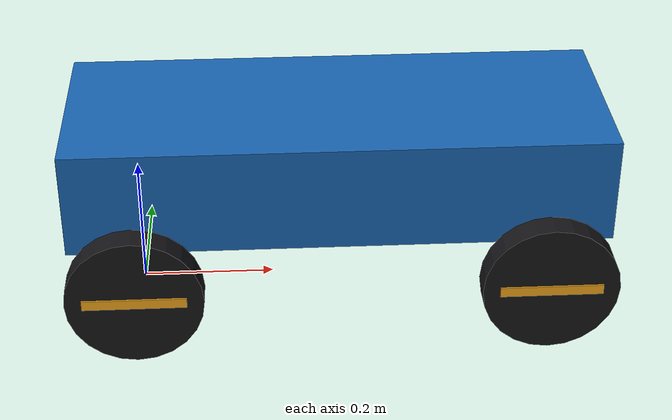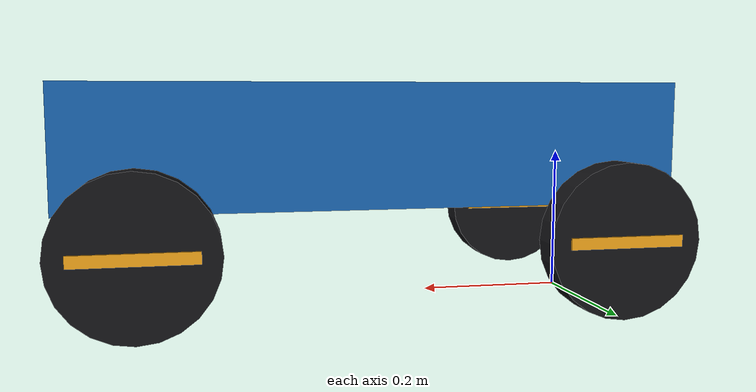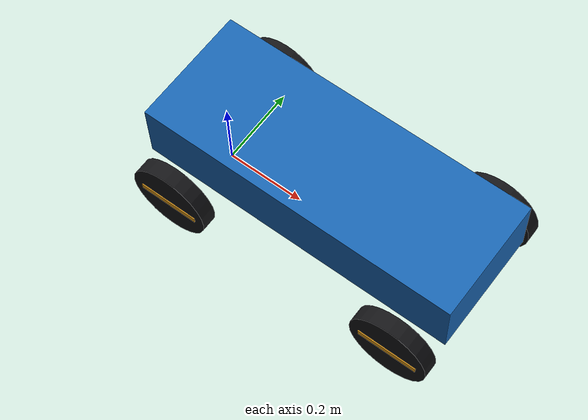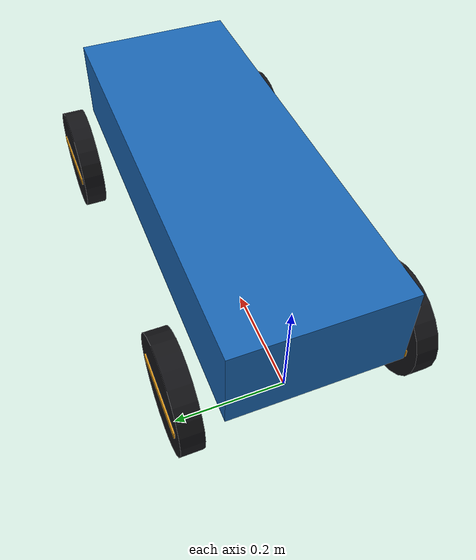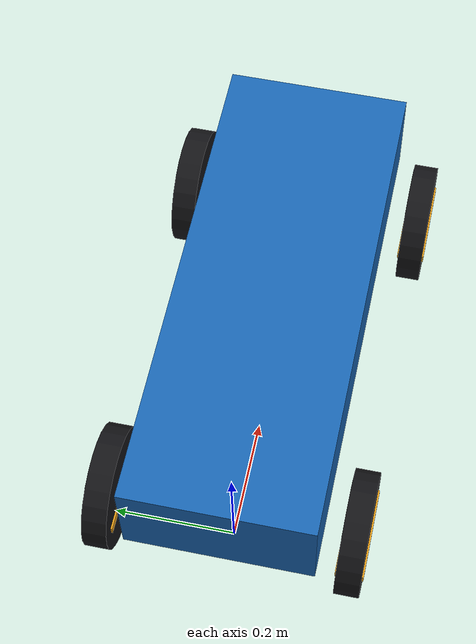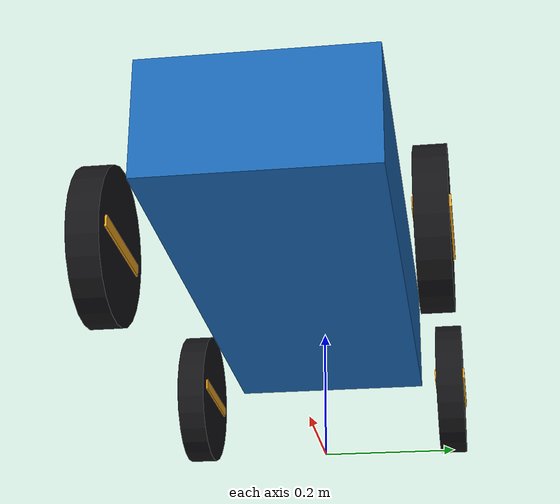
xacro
<?xml version="1.0"?>
<robot name="ackermann" xmlns:xacro="http://www.ros.org/wiki/xacro">
  <!-- 机械尺寸和转向限位在模型内定义；运行参数从展开后的 URDF 读取。 -->
  <xacro:property name="g" value="${dict(wheel_radius_m=0.1, wheelbase_m=0.6, track_width_m=0.4, max_steering_rad=0.6)}"/>
  <material name="body"><color rgba="0.1 0.4 0.7 1"/></material>
  <material name="rubber"><color rgba="0.08 0.08 0.09 1"/></material>
  <material name="spoke"><color rgba="0.95 0.65 0.1 1"/></material>
  <link name="base_footprint"/>
  <joint name="base_fixed" type="fixed"><parent link="base_footprint"/><child link="base_link"/></joint>
  <link name="base_link">
    <visual><origin xyz="${g['wheelbase_m']/2} 0 0.22"/><geometry><box size="${g['wheelbase_m']+0.2} ${g['track_width_m']-0.1} 0.16"/></geometry><material name="body"/></visual>
    <collision><origin xyz="${g['wheelbase_m']/2} 0 0.22"/><geometry><box size="${g['wheelbase_m']+0.2} ${g['track_width_m']-0.1} 0.16"/></geometry></collision>
  </link>
  <xacro:macro name="wheel" params="name parent x y z">
    <link name="${name}_link">
      <visual><origin rpy="${-pi/2} 0 0"/><geometry><cylinder radius="${g['wheel_radius_m']}" length="0.04"/></geometry><material name="rubber"/></visual>
      <visual><geometry><box size="0.15 0.045 0.015"/></geometry><material name="spoke"/></visual>
      <collision><origin rpy="${-pi/2} 0 0"/><geometry><cylinder radius="${g['wheel_radius_m']}" length="0.04"/></geometry></collision>
    </link>
    <joint name="${name}_joint" type="continuous"><parent link="${parent}"/><child link="${name}_link"/><origin xyz="${x} ${y} ${z}"/><axis xyz="0 1 0"/><limit effort="20" velocity="30"/></joint>
  </xacro:macro>
  <xacro:macro name="axle_side" params="side sign">
    <xacro:wheel name="rear_${side}_wheel" parent="base_link" x="0" y="${sign*g['track_width_m']/2}" z="${g['wheel_radius_m']}"/>
    <link name="${side}_steering_link"/>
    <joint name="${side}_steering_joint" type="revolute">
      <parent link="base_link"/><child link="${side}_steering_link"/>
      <origin xyz="${g['wheelbase_m']} ${sign*g['track_width_m']/2} ${g['wheel_radius_m']}"/>
      <axis xyz="0 0 1"/><limit lower="${-g['max_steering_rad']}" upper="${g['max_steering_rad']}" effort="20" velocity="10"/>
    </joint>
    <xacro:wheel name="front_${side}_wheel" parent="${side}_steering_link" x="0" y="0" z="0"/>
  </xacro:macro>
  <xacro:axle_side side="left" sign="${1}"/>
  <xacro:axle_side side="right" sign="${-1}"/>
</robot>
